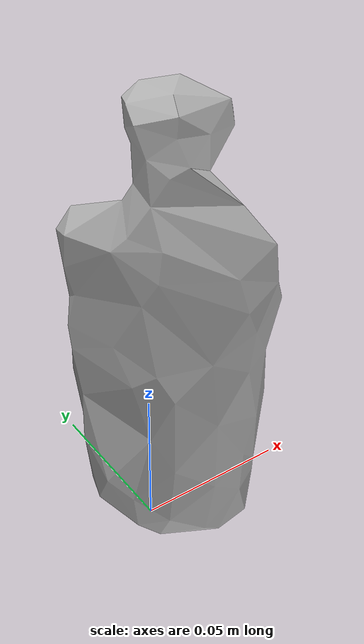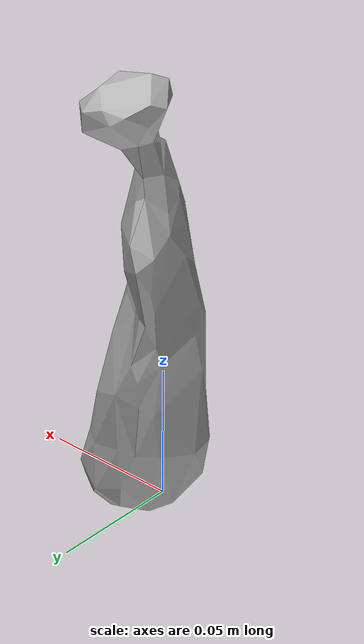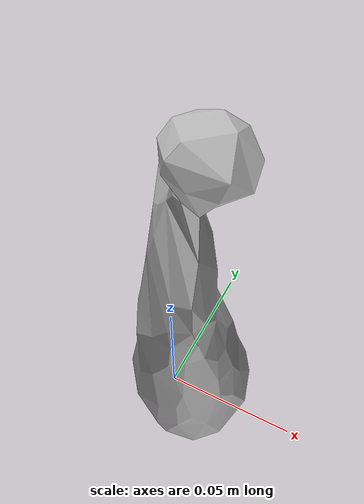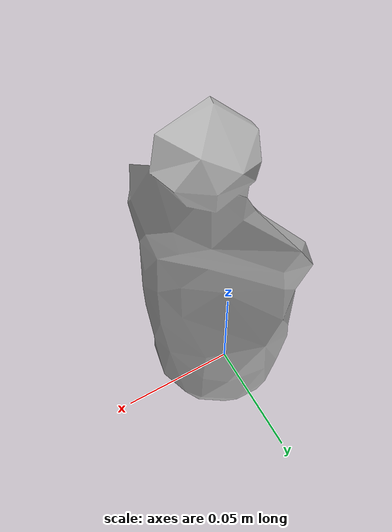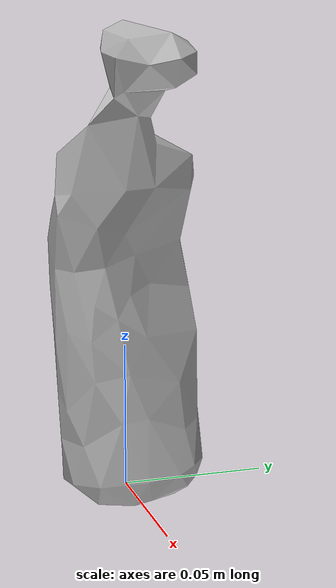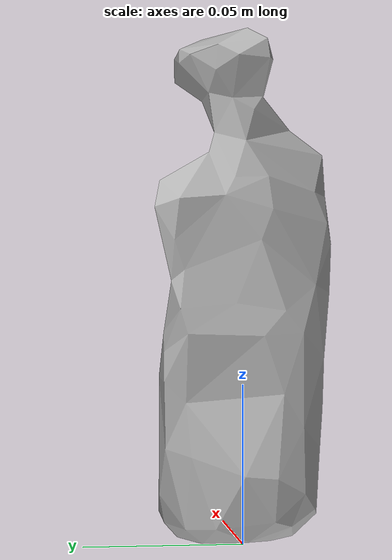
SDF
<?xml version='1.0'?>
<sdf version="1.4">
  <model name="mom_to_mom_butternut_squash_pear">
    <static>false</static>
    <link name="link">
      <inertial>
        <pose>0.011239651631474919 0.0032633987336099066 0.07176585301266387 3.1356935455188957 -0.025558376835151112 -2.5730410995167716</pose>
        <mass>0.031217958278512235</mass>
        <inertia>
          <ixx>6.181117409801756e-05</ixx>
          <ixy>-1.9486022374062508e-20</ixy>
          <ixz>1.2601637177308726e-21</ixz>
          <iyy>5.651776313514306e-05</iyy>
          <iyz>-4.364826436981837e-21</iyz>
          <izz>1.226832850937959e-05</izz>
        </inertia>
      </inertial>
      <collision name="collision">
        <geometry>
          <mesh>
            <!-- Use a downsampled mesh for collisions -->
            <uri>model:///mom_to_mom_butternut_squash_pear/mom_to_mom_butternut_squash_pear_250_collision.obj</uri>
	        </mesh>
        </geometry>
        <surface>
      </surface>
      </collision>
      <visual name="visual">
        <geometry>
          <mesh>
            <uri>model:///mom_to_mom_butternut_squash_pear/optimized_tsdf_texture_mapped_mesh.obj</uri>
	        </mesh>
        </geometry>
        <material>
          <script>
            <uri>model:///mom_to_mom_butternut_squash_pear/mom_to_mom_butternut_squash_pear.material</uri>
            <name>mom_to_mom_butternut_squash_pear</name>
          </script>
        </material>
      </visual>
    </link>
  </model>
</sdf>
